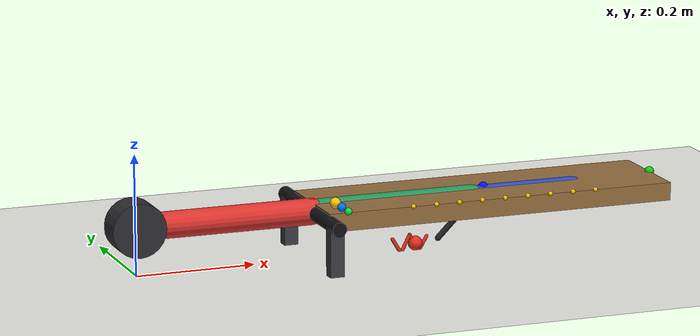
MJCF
<mujoco model="jrf_planar_arm_board">
    <compiler angle="radian" autolimits="true"/>

    <option timestep="0.002" gravity="0 0 -9.81" integrator="RK4">
        <flag contact="enable"/>
    </option>

    <visual>
        <global azimuth="135" elevation="-25"/>
    </visual>

    <default>
        <!-- Joint damping is physical dissipation; position actuators add closed-loop servoing. -->
        <joint damping="5.0" armature="0.05"/>
        <geom density="700" condim="3" friction="1.0 0.015 0.015" solref="0.012 1" solimp="0.86 0.995 0.001"/>
        <position kp="450" kv="45" ctrlrange="-3.14159 3.14159" forcerange="-350 350"/>
    </default>

    <worldbody>
        <geom name="floor" type="plane" size="2.0 1.2 0.05" rgba="0.92 0.92 0.90 1" contype="0" conaffinity="0"/>
        <light name="key_light" pos="0.1 -0.7 1.7" dir="0.2 0.5 -1" diffuse="0.8 0.8 0.8"/>
        <camera name="overview" pos="0.65 -1.25 0.65" xyaxes="1 0.35 0 -0.18 0.52 0.84"/>
        <body name="desired_marker" mocap="true" pos="0.30 -0.11 0.12">
            <site name="desired_marker_site" type="sphere" size="0.009" rgba="1.0 0.75 0.05 1"/>
        </body>
        <body name="actual_marker" mocap="true" pos="0.30 -0.14 0.12">
            <site name="actual_marker_site" type="sphere" size="0.007" rgba="0.0 0.45 1.0 1"/>
        </body>
        <body name="contact_marker" mocap="true" pos="0.30 -0.17 0.12">
            <site name="contact_marker_site" type="sphere" size="0.006" rgba="0.05 0.9 0.2 1"/>
        </body>

        <!-- 3R arm lives in the x-z plane. Hinge axes are y; the Python FK uses the same sign convention. -->
        <body name="base" pos="0 0 0.08">
            <geom name="base_mount" type="cylinder" size="0.045 0.025" axisangle="1 0 0 1.5707963" rgba="0.18 0.18 0.20 1" contype="0" conaffinity="0"/>

            <body name="link1" pos="0 0 0">
                <joint name="joint1" type="hinge" axis="0 -1 0" range="-2.85 2.85"/>
                <geom name="link1_geom" type="capsule" fromto="0 0 0 0.30 0 0" size="0.022" rgba="0.86 0.20 0.18 1" contype="0" conaffinity="0"/>

                <body name="link2" pos="0.30 0 0">
                    <joint name="joint2" type="hinge" axis="0 -1 0" range="-2.65 2.65"/>
                    <geom name="link2_geom" type="capsule" fromto="0 0 0 0.28 0 0" size="0.020" rgba="0.15 0.58 0.35 1" contype="0" conaffinity="0"/>

                    <body name="link3" pos="0.28 0 0">
                        <joint name="joint3" type="hinge" axis="0 -1 0" range="-2.65 2.65"/>
                        <geom name="link3_geom" type="capsule" fromto="0 0 0 0.18 0 0" size="0.018" rgba="0.16 0.30 0.78 1" contype="0" conaffinity="0"/>

                        <!-- Rigid pen tool attached to link 3: shaft is visual only; only the small tip collides. -->
                        <geom name="pen_shaft_geom" type="capsule" fromto="0.18 0 0 0.27 0 0" size="0.004"
                              density="1200" rgba="0.03 0.03 0.03 1" contype="0" conaffinity="0"/>
                        <geom name="pen_geom" type="sphere" pos="0.27 0 0" size="0.002" density="1200"
                              rgba="0.01 0.01 0.01 1" contype="1" conaffinity="1" margin="0.0005"/>
                        <site name="pen_tip" pos="0.27 0 0" size="0.004" rgba="1 0.85 0.05 1"/>
                    </body>
                </body>
            </body>
        </body>

        <!-- Passive board: its hinge is unactuated; spring/damper terms live on the joint. -->
        <body name="board_support" pos="0.30 0 0.08">
            <geom name="hinge_stand_left" type="box" pos="0 -0.11 -0.045" size="0.012 0.010 0.045" rgba="0.24 0.24 0.26 1" contype="0" conaffinity="0"/>
            <geom name="hinge_stand_right" type="box" pos="0 0.11 -0.045" size="0.012 0.010 0.045" rgba="0.24 0.24 0.26 1" contype="0" conaffinity="0"/>
            <geom name="hinge_axle_visual" type="cylinder" pos="0 0 0" size="0.012 0.13" axisangle="1 0 0 1.5707963" rgba="0.08 0.08 0.09 1" contype="0" conaffinity="0"/>
            <geom name="spring_anchor" type="sphere" pos="0.18 0 -0.07" size="0.012" rgba="0.90 0.18 0.12 1" contype="0" conaffinity="0"/>
            <geom name="spring_visual_1" type="capsule" fromto="0.14 0 -0.060 0.155 0 -0.085" size="0.003" rgba="0.90 0.18 0.12 1" contype="0" conaffinity="0"/>
            <geom name="spring_visual_2" type="capsule" fromto="0.155 0 -0.085 0.170 0 -0.055" size="0.003" rgba="0.90 0.18 0.12 1" contype="0" conaffinity="0"/>
            <geom name="spring_visual_3" type="capsule" fromto="0.170 0 -0.055 0.185 0 -0.085" size="0.003" rgba="0.90 0.18 0.12 1" contype="0" conaffinity="0"/>
            <geom name="spring_visual_4" type="capsule" fromto="0.185 0 -0.085 0.200 0 -0.060" size="0.003" rgba="0.90 0.18 0.12 1" contype="0" conaffinity="0"/>
            <geom name="damper_visual" type="capsule" fromto="0.22 0 -0.065 0.25 0 -0.035" size="0.005" rgba="0.12 0.12 0.14 1" contype="0" conaffinity="0"/>
        </body>
        <body name="board_base" pos="0.30 0 0.08">
            <joint name="board_hinge" type="hinge" axis="0 -1 0" range="-0.65 0.65" stiffness="20.0" damping="1.2"/>
            <geom name="board_geom" type="box" pos="0.30 0 0" size="0.30 0.085 0.015" density="250"
                  rgba="0.58 0.43 0.24 1" contype="1" conaffinity="1"/>
            <site name="board_hinge_site" pos="0 0 0.015" size="0.008" rgba="0.95 0.05 0.05 1"/>
            <site name="trajectory_dot_0" pos="0.14 -0.095 0.018" size="0.004" rgba="1.0 0.75 0.05 1"/>
            <site name="trajectory_dot_1" pos="0.18 -0.095 0.018" size="0.004" rgba="1.0 0.75 0.05 1"/>
            <site name="trajectory_dot_2" pos="0.22 -0.095 0.018" size="0.004" rgba="1.0 0.75 0.05 1"/>
            <site name="trajectory_dot_3" pos="0.26 -0.095 0.018" size="0.004" rgba="1.0 0.75 0.05 1"/>
            <site name="trajectory_dot_4" pos="0.30 -0.095 0.018" size="0.004" rgba="1.0 0.75 0.05 1"/>
            <site name="trajectory_dot_5" pos="0.34 -0.095 0.018" size="0.004" rgba="1.0 0.75 0.05 1"/>
            <site name="trajectory_dot_6" pos="0.38 -0.095 0.018" size="0.004" rgba="1.0 0.75 0.05 1"/>
            <site name="trajectory_dot_7" pos="0.42 -0.095 0.018" size="0.004" rgba="1.0 0.75 0.05 1"/>
            <site name="trajectory_dot_8" pos="0.46 -0.095 0.018" size="0.004" rgba="1.0 0.75 0.05 1"/>
            <site name="board_mid_surface" pos="0.30 0 0.015" size="0.008" rgba="0.05 0.05 0.95 1"/>
            <site name="board_end_surface" pos="0.60 0 0.015" size="0.008" rgba="0.05 0.80 0.05 1"/>
        </body>
    </worldbody>

    <actuator>
        <position name="act_joint1" joint="joint1"/>
        <position name="act_joint2" joint="joint2"/>
        <position name="act_joint3" joint="joint3"/>
    </actuator>
</mujoco>
